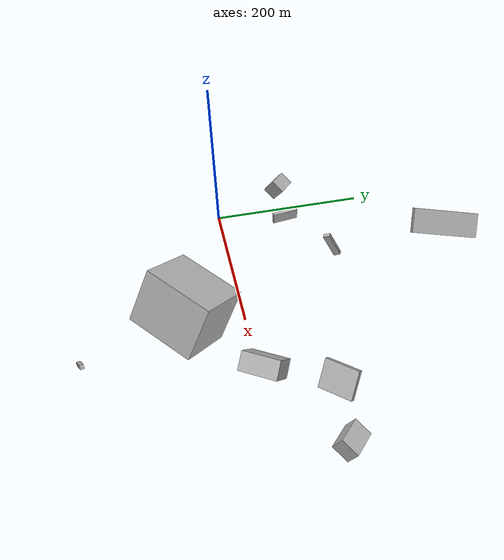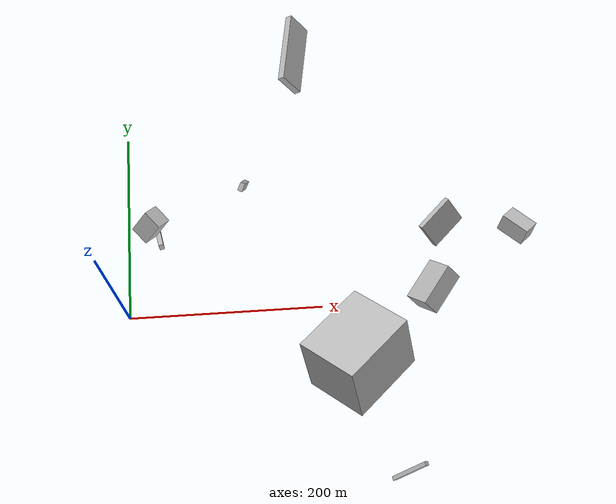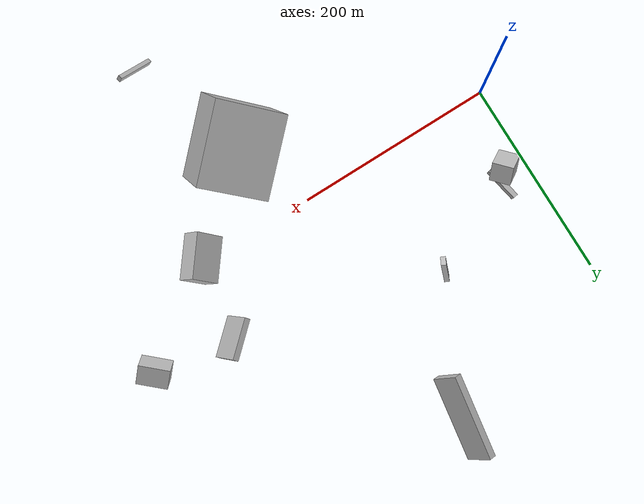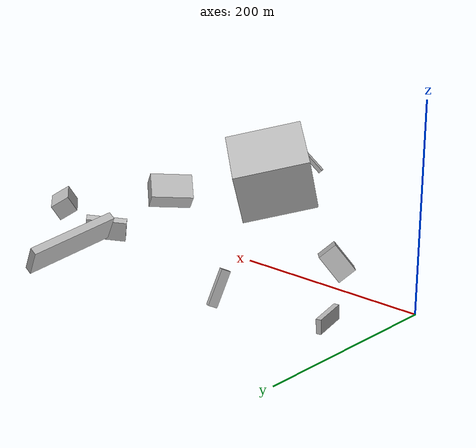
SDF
<sdf version="1.6">
 <world name="default">
  <scene>
   <sky><clouds><speed>12</speed></clouds></sky>
   <ambient>0.4 0.4 0.4 1</ambient>
   <background>0.7 0.7 0.7 1</background>
   <shadows>1</shadows>
  </scene>
  <gravity>0 0 -9.8066</gravity>
  <magnetic_field>6e-06 2.3e-05 -4.2e-05</magnetic_field>
  <physics default="0" name="default_physics" type="ode">
   <ode>
    <solver>
     <type>quick</type>
     <iters>10</iters>
     <sor>1.0</sor>
     <use_dynamic_moi_rescaling>0</use_dynamic_moi_rescaling>
    </solver>
    <constraints>
     <cfm>0</cfm>
     <erp>0.2</erp>
     <contact_max_correcting_vel>100</contact_max_correcting_vel>
     <contact_surface_layer>0.001</contact_surface_layer>
    </constraints>
   </ode>
   <max_step_size>0.004</max_step_size>
   <real_time_factor>1</real_time_factor>
   <real_time_update_rate>250</real_time_update_rate>
  </physics>
  <light name="sun" type="directional">
   <pose>0 0 10 0 0 0</pose>
   <diffuse>0.8 0.8 0.8 1</diffuse>
   <specular>0.2 0.2 0.2 1</specular>
   <attenuation>
    <range>1000</range>
    <constant>0.9</constant>
    <linear>0.01</linear>
    <quadratic>0.001</quadratic>
   </attenuation>
   <direction>-0.5 0.1 -0.9</direction>
  </light>
  <model name="building_1">
   <static>0</static>
   <pose>395.85667493988035 75.69266310757264 29.355929735914835 -1.447293084083134 -0.5426225486423267 -2.3812653699238484</pose>
   <link name="link">
    <gravity>0</gravity>
    <pose>0 0 15.0 0 0 0</pose>
    <collision name="collision"><geometry><box><size>21 18 30</size></box></geometry></collision>
    <visual name="visual">
     <cast_shadows>0</cast_shadows>
     <geometry><box><size>21 18 30</size></box></geometry>
     <material>
      <script>
       <uri>model://HANNAS_wall/materials/scripts</uri>
       <uri>model://HANNAS_wall/materials/textures</uri>
       <name>vrc/HANNAS_wall</name>
      </script>
     </material>
    </visual>
   </link>
  </model>
  <model name="building_2">
   <static>0</static>
   <pose>188.4190071410111 247.7863793232315 91.66180809254665 2.836918788631292 0.923106272996316 -0.39365235181024655</pose>
   <link name="link">
    <gravity>0</gravity>
    <pose>0 0 3.5 0 0 0</pose>
    <collision name="collision"><geometry><box><size>29 80 7</size></box></geometry></collision>
    <visual name="visual">
     <cast_shadows>0</cast_shadows>
     <geometry><box><size>29 80 7</size></box></geometry>
     <material>
      <script>
       <uri>model://HANNAS_wall/materials/scripts</uri>
       <uri>model://HANNAS_wall/materials/textures</uri>
       <name>vrc/HANNAS_wall</name>
      </script>
     </material>
    </visual>
   </link>
  </model>
  <model name="building_3">
   <static>0</static>
   <pose>207.5816887110438 -47.63314227412877 58.83988038827251 -1.1495494532900206 -0.21518159591970848 -2.3766339769005596</pose>
   <link name="link">
    <gravity>0</gravity>
    <pose>0 0 33.5 0 0 0</pose>
    <collision name="collision"><geometry><box><size>80 63 67</size></box></geometry></collision>
    <visual name="visual">
     <cast_shadows>0</cast_shadows>
     <geometry><box><size>80 63 67</size></box></geometry>
     <material>
      <script>
       <uri>model://HANNAS_wall/materials/scripts</uri>
       <uri>model://HANNAS_wall/materials/textures</uri>
       <name>vrc/HANNAS_wall</name>
      </script>
     </material>
    </visual>
   </link>
  </model>
  <model name="building_4">
   <static>0</static>
   <pose>23.845296153168604 74.55286773771373 54.44701007820808 -0.23388859093513276 -0.6704273522781791 -2.277570219406854</pose>
   <link name="link">
    <gravity>0</gravity>
    <pose>0 0 14.0 0 0 0</pose>
    <collision name="collision"><geometry><box><size>18 20 28</size></box></geometry></collision>
    <visual name="visual">
     <cast_shadows>0</cast_shadows>
     <geometry><box><size>18 20 28</size></box></geometry>
     <material>
      <script>
       <uri>model://HANNAS_wall/materials/scripts</uri>
       <uri>model://HANNAS_wall/materials/textures</uri>
       <name>vrc/HANNAS_wall</name>
      </script>
     </material>
    </visual>
   </link>
  </model>
  <model name="building_5">
   <static>0</static>
   <pose>36.03632508643297 71.00492125987331 15.063599135068213 1.6251073669427816 -0.009671755680869613 -2.940193817632208</pose>
   <link name="link">
    <gravity>0</gravity>
    <pose>0 0 17.5 0 0 0</pose>
    <collision name="collision"><geometry><box><size>5 14 35</size></box></geometry></collision>
    <visual name="visual">
     <cast_shadows>0</cast_shadows>
     <geometry><box><size>5 14 35</size></box></geometry>
     <material>
      <script>
       <uri>model://HANNAS_wall/materials/scripts</uri>
       <uri>model://HANNAS_wall/materials/textures</uri>
       <name>vrc/HANNAS_wall</name>
      </script>
     </material>
    </visual>
   </link>
  </model>
  <model name="building_6">
   <static>0</static>
   <pose>305.92669729680796 4.137814660277819 57.77552308450096 2.3933073285423028 -0.08886121470237342 0.9339598454934037</pose>
   <link name="link">
    <gravity>0</gravity>
    <pose>0 0 10.5 0 0 0</pose>
    <collision name="collision"><geometry><box><size>44 28 21</size></box></geometry></collision>
    <visual name="visual">
     <cast_shadows>0</cast_shadows>
     <geometry><box><size>44 28 21</size></box></geometry>
     <material>
      <script>
       <uri>model://HANNAS_wall/materials/scripts</uri>
       <uri>model://HANNAS_wall/materials/textures</uri>
       <name>vrc/HANNAS_wall</name>
      </script>
     </material>
    </visual>
   </link>
  </model>
  <model name="building_7">
   <static>0</static>
   <pose>257.7320258790656 -185.9562811711129 41.0780806878534 0.06887763980171299 -0.8298867154326898 -2.9542242082997348</pose>
   <link name="link">
    <gravity>0</gravity>
    <pose>0 0 21.0 0 0 0</pose>
    <collision name="collision"><geometry><box><size>5 4 42</size></box></geometry></collision>
    <visual name="visual">
     <cast_shadows>0</cast_shadows>
     <geometry><box><size>5 4 42</size></box></geometry>
     <material>
      <script>
       <uri>model://HANNAS_wall/materials/scripts</uri>
       <uri>model://HANNAS_wall/materials/textures</uri>
       <name>vrc/HANNAS_wall</name>
      </script>
     </material>
    </visual>
   </link>
  </model>
  <model name="building_8">
   <static>0</static>
   <pose>327.51520582950957 79.0100517032902 22.29382595997756 -0.9313468952587804 0.11393761597492034 -2.3864732575811103</pose>
   <link name="link">
    <gravity>0</gravity>
    <pose>0 0 3.0 0 0 0</pose>
    <collision name="collision"><geometry><box><size>41 33 6</size></box></geometry></collision>
    <visual name="visual">
     <cast_shadows>0</cast_shadows>
     <geometry><box><size>41 33 6</size></box></geometry>
     <material>
      <script>
       <uri>model://HANNAS_wall/materials/scripts</uri>
       <uri>model://HANNAS_wall/materials/textures</uri>
       <name>vrc/HANNAS_wall</name>
      </script>
     </material>
    </visual>
   </link>
  </model>
  <model name="building_9">
   <static>0</static>
   <pose>122.69640085940875 129.7488673473885 30.046840043305508 -1.7041000254282626 0.4270982106952492 -2.0766689707698838</pose>
   <link name="link">
    <gravity>0</gravity>
    <pose>0 0 2.5 0 0 0</pose>
    <collision name="collision"><geometry><box><size>9 35 5</size></box></geometry></collision>
    <visual name="visual">
     <cast_shadows>0</cast_shadows>
     <geometry><box><size>9 35 5</size></box></geometry>
     <material>
      <script>
       <uri>model://HANNAS_wall/materials/scripts</uri>
       <uri>model://HANNAS_wall/materials/textures</uri>
       <name>vrc/HANNAS_wall</name>
      </script>
     </material>
    </visual>
   </link>
  </model>
 </world>
</sdf>
